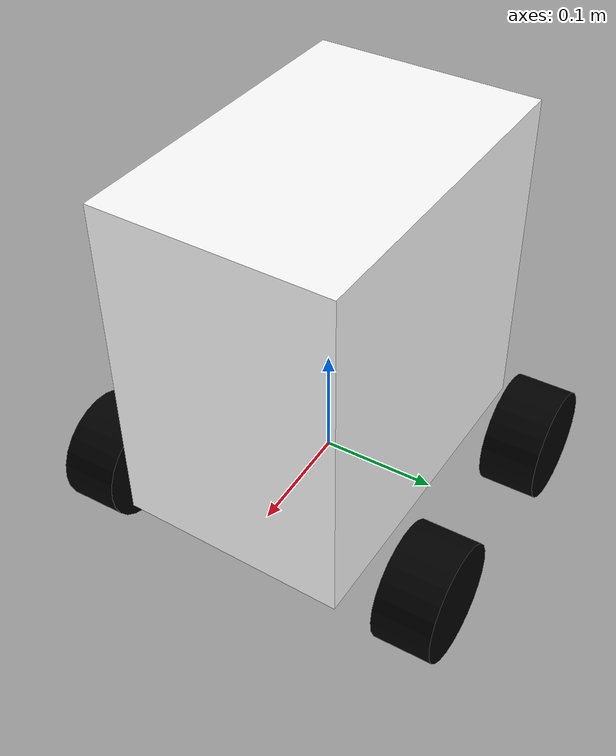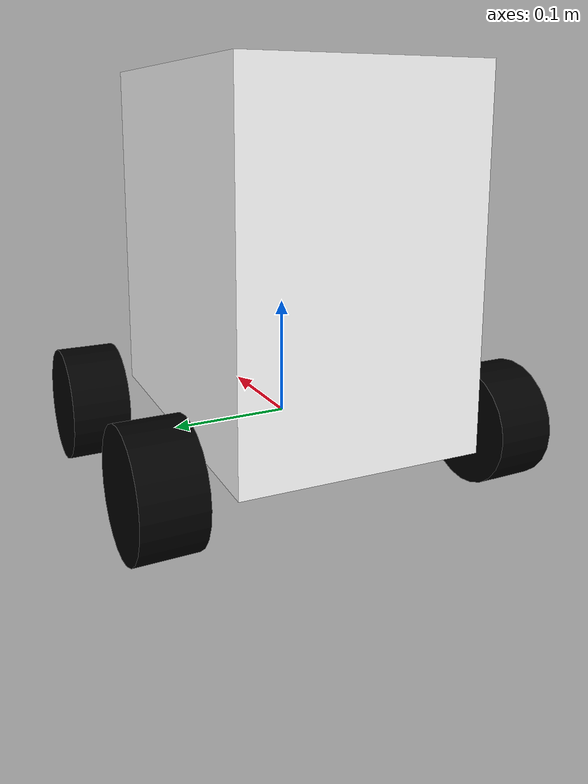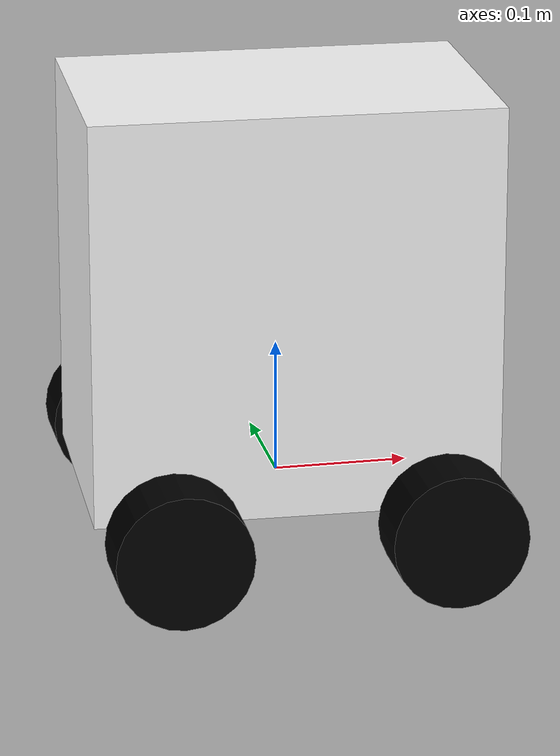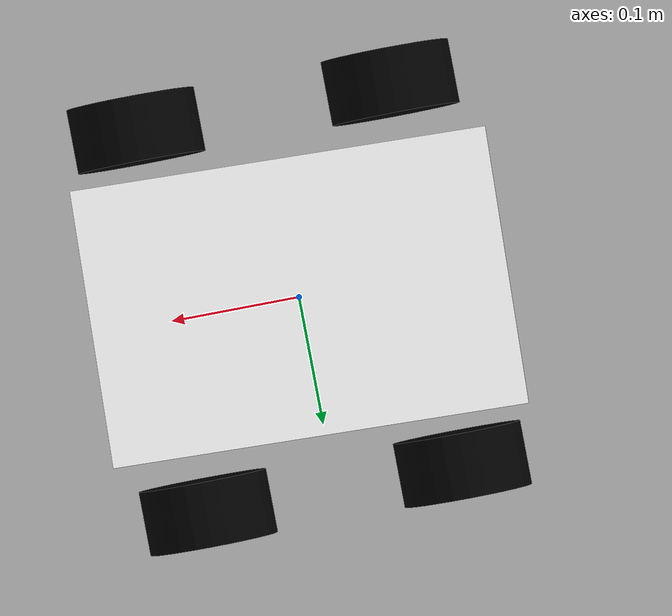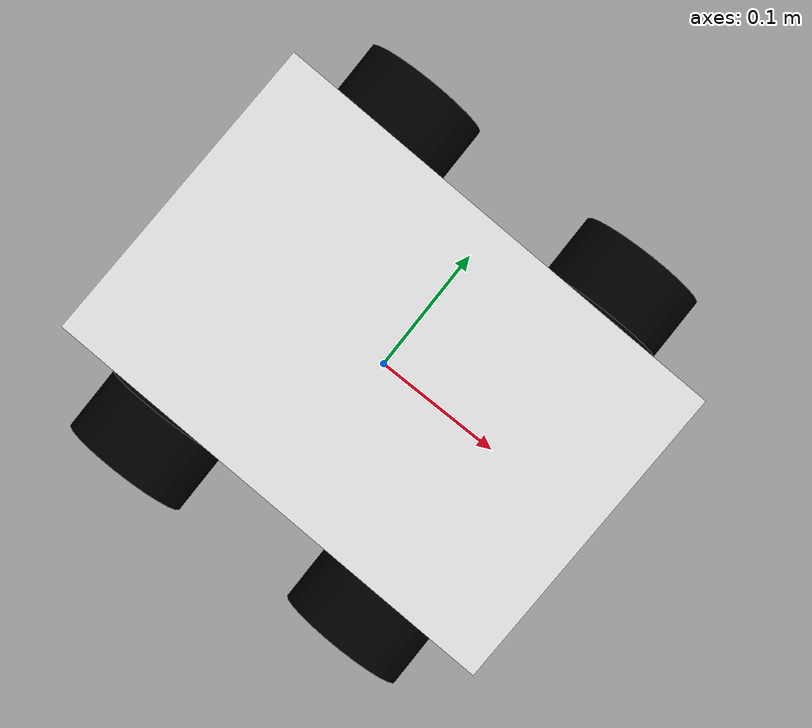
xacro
<?xml version="1.0"?>

<robot xmlns:xacro="http://www.ros.org/wiki/xacro"
    xmlns:sensor="http://playerstage.sourceforge.net/gazebo/xmlschema/#sensor"
        xmlns:controller="http://playerstage.sourceforge.net/gazebo/xmlschema/#controller"
        xmlns:interface="http://playerstage.sourceforge.net/gazebo/xmlschema/#interface"
    name="robot1_xacro">

    <xacro:property name="length_wheel" value="0.05" />
    <xacro:property name="radius_wheel" value="0.05" />
    <xacro:macro name="default_inertial" params="mass">
               <inertial>
                       <mass value="${mass}" />
                       <inertia ixx="1.0" ixy="0.0" ixz="0.0"
                                iyy="1.0" iyz="0.0"
                                izz="1.0" />
               </inertial>
    </xacro:macro>

    <link name="base_footprint">
        <visual>
            <geometry>
                    <box size="0.001 0.001 0.001"/>
                </geometry>
            <origin rpy="0 0 0" xyz="0 0 0"/>
        </visual>
        <xacro:default_inertial mass="0.0001"/>
    </link>
    <joint name="base_footprint_joint" type="fixed">
        <origin xyz="0 0 0" />
        <parent link="base_footprint" />
        <child link="base_link" />
    </joint>

    <link name="base_link">
        <visual>
            <geometry>
                    <box size="0.2 .3 .3"/>
                </geometry>
            <origin rpy="0 0 1.54" xyz="0 0 0.15"/>
            <material name="white">
                <color rgba="1 1 1 1"/>
            </material>
        </visual>
        <collision>
            <geometry>
                    <box size="0.2 .3 0.1"/>
            </geometry>
        </collision>
        <xacro:default_inertial mass="10"/>
    </link>

    <link name="wheel_1">
        <visual>
                <geometry>
                    <cylinder length="${length_wheel}" radius="${radius_wheel}"/>
                </geometry>
            <origin rpy="0 0 0" xyz="0 0 0"/>
            <material name="black">
                <color rgba="0 0 0 1"/>
            </material>
        </visual>
        <collision>
            <geometry>
                    <cylinder length="${length_wheel}" radius="${radius_wheel}"/>
            </geometry>
        </collision>
        <xacro:default_inertial mass="1"/>
    </link>

    <link name="wheel_2">
        <visual>
                <geometry>
                    <cylinder length="${length_wheel}" radius="${radius_wheel}"/>
                </geometry>
            <origin rpy="0 0 0" xyz="0 0 0"/>
            <material name="black"/>
        </visual>
        <collision>
            <geometry>
                    <cylinder length="${length_wheel}" radius="${radius_wheel}"/>
            </geometry>
        </collision>
        <xacro:default_inertial mass="1"/>

    </link>

    <link name="wheel_3">
        <visual>
                <geometry>
                    <cylinder length="${length_wheel}" radius="${radius_wheel}"/>
                </geometry>

            <origin rpy="0 0 0" xyz="0 0 0"/>
            <material name="black"/>
        </visual>
        <collision>
            <geometry>
                    <cylinder length="${length_wheel}" radius="${radius_wheel}"/>
            </geometry>
        </collision>
        <xacro:default_inertial mass="1"/>
    </link>

    <link name="wheel_4">
        <visual>
                <geometry>
                    <cylinder length="${length_wheel}" radius="${radius_wheel}"/>
                </geometry>
            <origin rpy="0 0 0" xyz="0 0 0" />
            <material name="black"/>
        </visual>
        <collision>
            <geometry>
                    <cylinder length="${length_wheel}" radius="${radius_wheel}"/>
            </geometry>
        </collision>
        <xacro:default_inertial mass="1"/>

    </link>

 <joint name="base_to_wheel1" type="continuous">
   <parent link="base_link"/>
   <child link="wheel_1"/>
   <origin rpy="1.5707 0 0" xyz="0.1 0.15 0"/>
   <axis xyz="0 0 1" />
 </joint>

 <joint name="base_to_wheel2" type="continuous">
   <axis xyz="0 0 1" />
   <anchor xyz="0 0 0" />
   <limit effort="100" velocity="100" />
   <parent link="base_link"/>
   <child link="wheel_2"/>
   <origin rpy="1.5707 0 0" xyz="-0.1 0.15 0"/>
</joint>

 <joint name="base_to_wheel3" type="continuous">
   <parent link="base_link"/>
   <axis xyz="0 0 1" />
   <child link="wheel_3"/>
   <origin rpy="1.5707 0 0" xyz="0.1 -0.15 0"/>
 </joint>

 <joint name="base_to_wheel4" type="continuous">
   <parent link="base_link"/>
   <axis xyz="0 0 1" />
   <child link="wheel_4"/>
   <origin rpy="1.5707 0 0" xyz="-0.1 -0.15 0"/>
 </joint>

<gazebo>
  <plugin name="skid_steer_drive_controller" filename="libgazebo_ros_skid_steer_drive.so">
    <updateRate>100.0</updateRate>
    <robotNamespace></robotNamespace>
    <leftFrontJoint>base_to_wheel1</leftFrontJoint>
    <rightFrontJoint>base_to_wheel3</rightFrontJoint>
    <leftRearJoint>base_to_wheel2</leftRearJoint>
    <rightRearJoint>base_to_wheel4</rightRearJoint>
    <wheelSeparation>4</wheelSeparation>
    <wheelDiameter>0.1</wheelDiameter>
    <commandTopic>cmd_vel</commandTopic>
    <odometryTopic>odom</odometryTopic>
    <robotBaseFrame>base_footprint</robotBaseFrame>
    <odometryFrame>odom</odometryFrame>
    <torque>1</torque>
    <topicName>cmd_vel</topicName>
    <broadcastTF>1</broadcastTF>
  </plugin>
 </gazebo>

<gazebo>
    <plugin name="gazebo_ros_control" filename="libgazebo_ros_control.so">
      <robotNamespace>/robot</robotNamespace>
      <legacyModeNS>true</legacyModeNS>
    </plugin>
  </gazebo>

<gazebo reference="sensor_link">
    <sensor type="depth" name="camera1">
        <always_on>1</always_on>
        <visualize>true</visualize>
        <camera>
            <horizontal_fov>1.047</horizontal_fov>
            <image>
                <width>640</width>
                <height>480</height>
                <format>R8G8B8</format>
            </image>
            <depth_camera>

            </depth_camera>
            <clip>
                <near>0.1</near>
                <far>100</far>
            </clip>
        </camera>
             <plugin name="camera_controller" filename="libgazebo_ros_openni_kinect.so">
             <alwaysOn>true</alwaysOn>
                <updateRate>5</updateRate>
                <cameraName>kinect2</cameraName>
                <frameName>base_link</frameName>
            <imageTopicName>qhd/image_color_rect</imageTopicName>
            <depthImageTopicName>qhd/image_depth_rect</depthImageTopicName>
            <pointCloudTopicName>depth/points</pointCloudTopicName>
            <cameraInfoTopicName>qhd/camera_info</cameraInfoTopicName>
            <depthImageCameraInfoTopicName>depth/camera_info</depthImageCameraInfoTopicName>
            <pointCloudCutoff>0.4</pointCloudCutoff>
                <hackBaseline>0.07</hackBaseline>
                <distortionK1>0.0</distortionK1>
                <distortionK2>0.0</distortionK2>
                <distortionK3>0.0</distortionK3>
                <distortionT1>0.0</distortionT1>
                <distortionT2>0.0</distortionT2>
            <CxPrime>0.0</CxPrime>
            <Cx>0.0</Cx>
            <Cy>0.0</Cy>
            <focalLength>0.0</focalLength>
            <hackBaseline>0</hackBaseline>
            </plugin>
    </sensor>
  </gazebo>

</robot>
